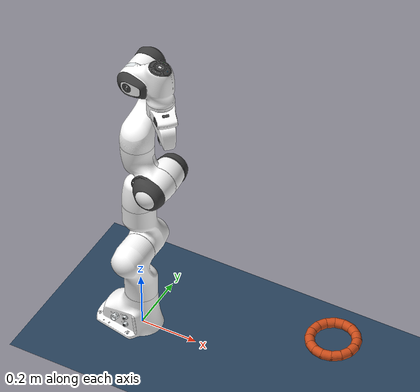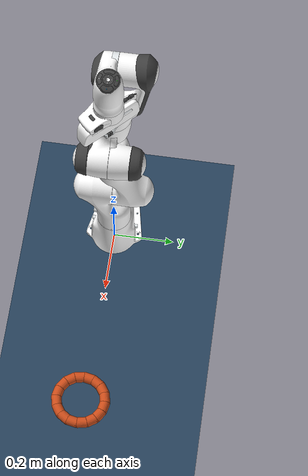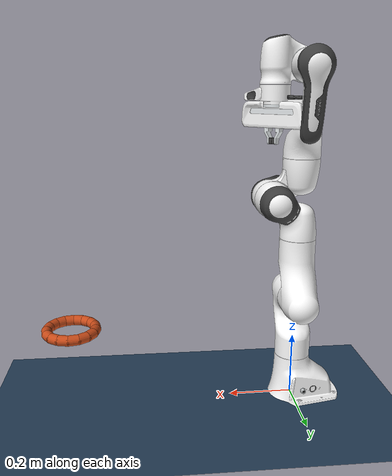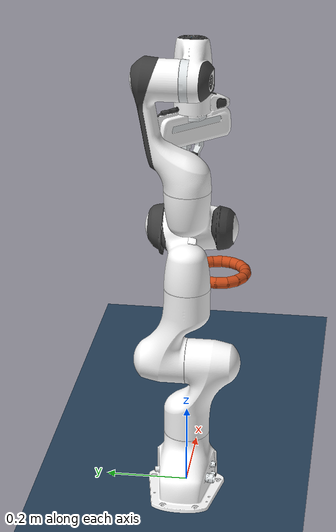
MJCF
<mujoco model="panda scene with torus ring">
  <include file="panda.xml"/>

  <statistic center="0.3 0 0.4" extent="1"/>
  <option iterations="60" noslip_iterations="30"/>

  <visual>
    <headlight diffuse="0.6 0.6 0.6" ambient="0.3 0.3 0.3" specular="0 0 0"/>
    <rgba haze="0.15 0.25 0.35 1"/>
    <global azimuth="120" elevation="-20"/>
  </visual>

  <asset>
    <texture type="skybox" builtin="gradient" rgb1="0.3 0.5 0.7" rgb2="0 0 0" width="512" height="3072"/>
    <texture type="2d" name="groundplane" builtin="checker" mark="edge" rgb1="0.2 0.3 0.4" rgb2="0.1 0.2 0.3"
      markrgb="0.8 0.8 0.8" width="300" height="300"/>
    <material name="groundplane" texture="groundplane" texuniform="true" texrepeat="5 5" reflectance="0.2"/>
    <material name="torus_mat" rgba="0.8 0.3 0.1 1" specular="0.5" shininess="0.5"/>
  </asset>

  <worldbody>
    <light pos="0 0 1.5" dir="0 0 -1" directional="true"/>
    <geom name="floor" size="0 0 0.05" type="plane" material="groundplane"
          solref="0.001 1" solimp="0.99 0.999 0.001" priority="1"/>

    <!--
      空心圆环：16 个 capsule 首尾相接排成圆环
      主半径 R = 0.075 m (7.5 cm)，管半径 r = 0.016 m (1.6 cm)
      圆环外径 ≈ 18.2 cm，内径 ≈ 11.8 cm，管径 3.2 cm（夹爪可夹）
    -->
    <body name="torus" pos="0.7 0 0.25">
      <freejoint/>
      <geom name="seg0"  type="capsule" size="0.016" material="torus_mat"
            fromto=" 0.07500  0.00000 0  0.06929  0.02870 0"
            condim="6" friction="10 4 0.5" solref="0.015 1" margin="0.002" mass="0.002"/>
      <geom name="seg1"  type="capsule" size="0.016" material="torus_mat"
            fromto=" 0.06929  0.02870 0  0.05303  0.05303 0"
            condim="6" friction="10 4 0.5" solref="0.015 1" margin="0.002" mass="0.002"/>
      <geom name="seg2"  type="capsule" size="0.016" material="torus_mat"
            fromto=" 0.05303  0.05303 0  0.02870  0.06929 0"
            condim="6" friction="10 4 0.5" solref="0.015 1" margin="0.002" mass="0.002"/>
      <geom name="seg3"  type="capsule" size="0.016" material="torus_mat"
            fromto=" 0.02870  0.06929 0  0.00000  0.07500 0"
            condim="6" friction="10 4 0.5" solref="0.015 1" margin="0.002" mass="0.002"/>
      <geom name="seg4"  type="capsule" size="0.016" material="torus_mat"
            fromto=" 0.00000  0.07500 0 -0.02870  0.06929 0"
            condim="6" friction="10 4 0.5" solref="0.015 1" margin="0.002" mass="0.002"/>
      <geom name="seg5"  type="capsule" size="0.016" material="torus_mat"
            fromto="-0.02870  0.06929 0 -0.05303  0.05303 0"
            condim="6" friction="10 4 0.5" solref="0.015 1" margin="0.002" mass="0.002"/>
      <geom name="seg6"  type="capsule" size="0.016" material="torus_mat"
            fromto="-0.05303  0.05303 0 -0.06929  0.02870 0"
            condim="6" friction="10 4 0.5" solref="0.015 1" margin="0.002" mass="0.002"/>
      <geom name="seg7"  type="capsule" size="0.016" material="torus_mat"
            fromto="-0.06929  0.02870 0 -0.07500  0.00000 0"
            condim="6" friction="10 4 0.5" solref="0.015 1" margin="0.002" mass="0.002"/>
      <geom name="seg8"  type="capsule" size="0.016" material="torus_mat"
            fromto="-0.07500  0.00000 0 -0.06929 -0.02870 0"
            condim="6" friction="10 4 0.5" solref="0.015 1" margin="0.002" mass="0.002"/>
      <geom name="seg9"  type="capsule" size="0.016" material="torus_mat"
            fromto="-0.06929 -0.02870 0 -0.05303 -0.05303 0"
            condim="6" friction="10 4 0.5" solref="0.015 1" margin="0.002" mass="0.002"/>
      <geom name="seg10" type="capsule" size="0.016" material="torus_mat"
            fromto="-0.05303 -0.05303 0 -0.02870 -0.06929 0"
            condim="6" friction="10 4 0.5" solref="0.015 1" margin="0.002" mass="0.002"/>
      <geom name="seg11" type="capsule" size="0.016" material="torus_mat"
            fromto="-0.02870 -0.06929 0  0.00000 -0.07500 0"
            condim="6" friction="10 4 0.5" solref="0.015 1" margin="0.002" mass="0.002"/>
      <geom name="seg12" type="capsule" size="0.016" material="torus_mat"
            fromto=" 0.00000 -0.07500 0  0.02870 -0.06929 0"
            condim="6" friction="10 4 0.5" solref="0.015 1" margin="0.002" mass="0.002"/>
      <geom name="seg13" type="capsule" size="0.016" material="torus_mat"
            fromto=" 0.02870 -0.06929 0  0.05303 -0.05303 0"
            condim="6" friction="10 4 0.5" solref="0.015 1" margin="0.002" mass="0.002"/>
      <geom name="seg14" type="capsule" size="0.016" material="torus_mat"
            fromto=" 0.05303 -0.05303 0  0.06929 -0.02870 0"
            condim="6" friction="10 4 0.5" solref="0.015 1" margin="0.002" mass="0.002"/>
      <geom name="seg15" type="capsule" size="0.016" material="torus_mat"
            fromto=" 0.06929 -0.02870 0  0.07500  0.00000 0"
            condim="6" friction="10 4 0.5" solref="0.015 1" margin="0.002" mass="0.002"/>
    </body>
  </worldbody>

</mujoco>

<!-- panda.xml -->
<mujoco model="panda">
  <compiler angle="radian" meshdir="assets" autolimits="true"/>

  <option integrator="implicitfast"/>

  <default>
    <default class="panda">
      <material specular="0.5" shininess="0.25"/>
      <joint armature="0.1" damping="1" axis="0 0 1" range="-2.8973 2.8973"/>
      <general dyntype="none" biastype="affine" ctrlrange="-2.8973 2.8973" forcerange="-87 87"/>
      <default class="finger">
        <joint axis="0 1 0" type="slide" range="0 0.04" damping="5" armature="0.02"/>
      </default>

      <default class="visual">
        <geom type="mesh" contype="0" conaffinity="0" group="2"/>
      </default>
      <default class="collision">
        <geom type="mesh" group="3"/>
        <default class="fingertip_pad_collision_1">
          <geom type="box" size="0.0085 0.004 0.0085" pos="0 0.0055 0.0445"
                condim="6" friction="30 12 3" solref="-30000 -1000"
                solimp="0.99 0.999 0.0005 0.5 2" priority="2"/>
        </default>
        <default class="fingertip_pad_collision_2">
          <geom type="box" size="0.003 0.002 0.003" pos="0.0055 0.002 0.05"
                condim="6" friction="30 12 3" solref="-30000 -1000"
                solimp="0.99 0.999 0.0005 0.5 2" priority="2"/>
        </default>
        <default class="fingertip_pad_collision_3">
          <geom type="box" size="0.003 0.002 0.003" pos="-0.0055 0.002 0.05"
                condim="6" friction="30 12 3" solref="-30000 -1000"
                solimp="0.99 0.999 0.0005 0.5 2" priority="2"/>
        </default>
        <default class="fingertip_pad_collision_4">
          <geom type="box" size="0.003 0.002 0.0035" pos="0.0055 0.002 0.0395"
                condim="6" friction="30 12 3" solref="-30000 -1000"
                solimp="0.99 0.999 0.0005 0.5 2" priority="2"/>
        </default>
        <default class="fingertip_pad_collision_5">
          <geom type="box" size="0.003 0.002 0.0035" pos="-0.0055 0.002 0.0395"
                condim="6" friction="30 12 3" solref="-30000 -1000"
                solimp="0.99 0.999 0.0005 0.5 2" priority="2"/>
        </default>
      </default>
    </default>
  </default>

  <asset>
    <material class="panda" name="white" rgba="1 1 1 1"/>
    <material class="panda" name="off_white" rgba="0.901961 0.921569 0.929412 1"/>
    <material class="panda" name="black" rgba="0.25 0.25 0.25 1"/>
    <material class="panda" name="green" rgba="0 1 0 1"/>
    <material class="panda" name="light_blue" rgba="0.039216 0.541176 0.780392 1"/>

    <!-- Collision meshes -->
    <mesh name="link0_c" file="link0.stl"/>
    <mesh name="link1_c" file="link1.stl"/>
    <mesh name="link2_c" file="link2.stl"/>
    <mesh name="link3_c" file="link3.stl"/>
    <mesh name="link4_c" file="link4.stl"/>
    <mesh name="link5_c0" file="link5_collision_0.obj"/>
    <mesh name="link5_c1" file="link5_collision_1.obj"/>
    <mesh name="link5_c2" file="link5_collision_2.obj"/>
    <mesh name="link6_c" file="link6.stl"/>
    <mesh name="link7_c" file="link7.stl"/>
    <mesh name="hand_c" file="hand.stl"/>

    <!-- Visual meshes -->
    <mesh file="link0_0.obj"/>
    <mesh file="link0_1.obj"/>
    <mesh file="link0_2.obj"/>
    <mesh file="link0_3.obj"/>
    <mesh file="link0_4.obj"/>
    <mesh file="link0_5.obj"/>
    <mesh file="link0_7.obj"/>
    <mesh file="link0_8.obj"/>
    <mesh file="link0_9.obj"/>
    <mesh file="link0_10.obj"/>
    <mesh file="link0_11.obj"/>
    <mesh file="link1.obj"/>
    <mesh file="link2.obj"/>
    <mesh file="link3_0.obj"/>
    <mesh file="link3_1.obj"/>
    <mesh file="link3_2.obj"/>
    <mesh file="link3_3.obj"/>
    <mesh file="link4_0.obj"/>
    <mesh file="link4_1.obj"/>
    <mesh file="link4_2.obj"/>
    <mesh file="link4_3.obj"/>
    <mesh file="link5_0.obj"/>
    <mesh file="link5_1.obj"/>
    <mesh file="link5_2.obj"/>
    <mesh file="link6_0.obj"/>
    <mesh file="link6_1.obj"/>
    <mesh file="link6_2.obj"/>
    <mesh file="link6_3.obj"/>
    <mesh file="link6_4.obj"/>
    <mesh file="link6_5.obj"/>
    <mesh file="link6_6.obj"/>
    <mesh file="link6_7.obj"/>
    <mesh file="link6_8.obj"/>
    <mesh file="link6_9.obj"/>
    <mesh file="link6_10.obj"/>
    <mesh file="link6_11.obj"/>
    <mesh file="link6_12.obj"/>
    <mesh file="link6_13.obj"/>
    <mesh file="link6_14.obj"/>
    <mesh file="link6_15.obj"/>
    <mesh file="link6_16.obj"/>
    <mesh file="link7_0.obj"/>
    <mesh file="link7_1.obj"/>
    <mesh file="link7_2.obj"/>
    <mesh file="link7_3.obj"/>
    <mesh file="link7_4.obj"/>
    <mesh file="link7_5.obj"/>
    <mesh file="link7_6.obj"/>
    <mesh file="link7_7.obj"/>
    <mesh file="hand_0.obj"/>
    <mesh file="hand_1.obj"/>
    <mesh file="hand_2.obj"/>
    <mesh file="hand_3.obj"/>
    <mesh file="hand_4.obj"/>
    <mesh file="finger_0.obj"/>
    <mesh file="finger_1.obj"/>
  </asset>

  <worldbody>
    <light name="top" pos="0 0 2" mode="trackcom"/>
    <body name="link0" childclass="panda">
      <inertial mass="0.629769" pos="-0.041018 -0.00014 0.049974"
        fullinertia="0.00315 0.00388 0.004285 8.2904e-7 0.00015 8.2299e-6"/>
      <geom mesh="link0_0" material="off_white" class="visual"/>
      <geom mesh="link0_1" material="black" class="visual"/>
      <geom mesh="link0_2" material="off_white" class="visual"/>
      <geom mesh="link0_3" material="black" class="visual"/>
      <geom mesh="link0_4" material="off_white" class="visual"/>
      <geom mesh="link0_5" material="black" class="visual"/>
      <geom mesh="link0_7" material="white" class="visual"/>
      <geom mesh="link0_8" material="white" class="visual"/>
      <geom mesh="link0_9" material="black" class="visual"/>
      <geom mesh="link0_10" material="off_white" class="visual"/>
      <geom mesh="link0_11" material="white" class="visual"/>
      <geom mesh="link0_c" class="collision"/>
      <body name="link1" pos="0 0 0.333">
        <inertial mass="4.970684" pos="0.003875 0.002081 -0.04762"
          fullinertia="0.70337 0.70661 0.0091170 -0.00013900 0.0067720 0.019169"/>
        <joint name="joint1"/>
        <geom material="white" mesh="link1" class="visual"/>
        <geom mesh="link1_c" class="collision"/>
        <body name="link2" quat="1 -1 0 0">
          <inertial mass="0.646926" pos="-0.003141 -0.02872 0.003495"
            fullinertia="0.0079620 2.8110e-2 2.5995e-2 -3.925e-3 1.0254e-2 7.04e-4"/>
          <joint name="joint2" range="-1.7628 1.7628"/>
          <geom material="white" mesh="link2" class="visual"/>
          <geom mesh="link2_c" class="collision"/>
          <body name="link3" pos="0 -0.316 0" quat="1 1 0 0">
            <joint name="joint3"/>
            <inertial mass="3.228604" pos="2.7518e-2 3.9252e-2 -6.6502e-2"
              fullinertia="3.7242e-2 3.6155e-2 1.083e-2 -4.761e-3 -1.1396e-2 -1.2805e-2"/>
            <geom mesh="link3_0" material="white" class="visual"/>
            <geom mesh="link3_1" material="white" class="visual"/>
            <geom mesh="link3_2" material="white" class="visual"/>
            <geom mesh="link3_3" material="black" class="visual"/>
            <geom mesh="link3_c" class="collision"/>
            <body name="link4" pos="0.0825 0 0" quat="1 1 0 0">
              <inertial mass="3.587895" pos="-5.317e-2 1.04419e-1 2.7454e-2"
                fullinertia="2.5853e-2 1.9552e-2 2.8323e-2 7.796e-3 -1.332e-3 8.641e-3"/>
              <joint name="joint4" range="-3.0718 -0.0698"/>
              <geom mesh="link4_0" material="white" class="visual"/>
              <geom mesh="link4_1" material="white" class="visual"/>
              <geom mesh="link4_2" material="black" class="visual"/>
              <geom mesh="link4_3" material="white" class="visual"/>
              <geom mesh="link4_c" class="collision"/>
              <body name="link5" pos="-0.0825 0.384 0" quat="1 -1 0 0">
                <inertial mass="1.225946" pos="-1.1953e-2 4.1065e-2 -3.8437e-2"
                  fullinertia="3.5549e-2 2.9474e-2 8.627e-3 -2.117e-3 -4.037e-3 2.29e-4"/>
                <joint name="joint5"/>
                <geom mesh="link5_0" material="black" class="visual"/>
                <geom mesh="link5_1" material="white" class="visual"/>
                <geom mesh="link5_2" material="white" class="visual"/>
                <geom mesh="link5_c0" class="collision"/>
                <geom mesh="link5_c1" class="collision"/>
                <geom mesh="link5_c2" class="collision"/>
                <body name="link6" quat="1 1 0 0">
                  <inertial mass="1.666555" pos="6.0149e-2 -1.4117e-2 -1.0517e-2"
                    fullinertia="1.964e-3 4.354e-3 5.433e-3 1.09e-4 -1.158e-3 3.41e-4"/>
                  <joint name="joint6" range="-0.0175 3.7525"/>
                  <geom mesh="link6_0" material="off_white" class="visual"/>
                  <geom mesh="link6_1" material="white" class="visual"/>
                  <geom mesh="link6_2" material="black" class="visual"/>
                  <geom mesh="link6_3" material="white" class="visual"/>
                  <geom mesh="link6_4" material="white" class="visual"/>
                  <geom mesh="link6_5" material="white" class="visual"/>
                  <geom mesh="link6_6" material="white" class="visual"/>
                  <geom mesh="link6_7" material="light_blue" class="visual"/>
                  <geom mesh="link6_8" material="light_blue" class="visual"/>
                  <geom mesh="link6_9" material="black" class="visual"/>
                  <geom mesh="link6_10" material="black" class="visual"/>
                  <geom mesh="link6_11" material="white" class="visual"/>
                  <geom mesh="link6_12" material="green" class="visual"/>
                  <geom mesh="link6_13" material="white" class="visual"/>
                  <geom mesh="link6_14" material="black" class="visual"/>
                  <geom mesh="link6_15" material="black" class="visual"/>
                  <geom mesh="link6_16" material="white" class="visual"/>
                  <geom mesh="link6_c" class="collision"/>
                  <body name="link7" pos="0.088 0 0" quat="1 1 0 0">
                    <inertial mass="7.35522e-01" pos="1.0517e-2 -4.252e-3 6.1597e-2"
                      fullinertia="1.2516e-2 1.0027e-2 4.815e-3 -4.28e-4 -1.196e-3 -7.41e-4"/>
                    <joint name="joint7"/>
                    <geom mesh="link7_0" material="white" class="visual"/>
                    <geom mesh="link7_1" material="black" class="visual"/>
                    <geom mesh="link7_2" material="black" class="visual"/>
                    <geom mesh="link7_3" material="black" class="visual"/>
                    <geom mesh="link7_4" material="black" class="visual"/>
                    <geom mesh="link7_5" material="black" class="visual"/>
                    <geom mesh="link7_6" material="black" class="visual"/>
                    <geom mesh="link7_7" material="white" class="visual"/>
                    <geom mesh="link7_c" class="collision"/>
                    <body name="hand" pos="0 0 0.107" quat="0.9238795 0 0 -0.3826834">
                      <inertial mass="0.73" pos="-0.01 0 0.03" diaginertia="0.001 0.0025 0.0017"/>
                      <geom mesh="hand_0" material="off_white" class="visual"/>
                      <geom mesh="hand_1" material="black" class="visual"/>
                      <geom mesh="hand_2" material="black" class="visual"/>
                      <geom mesh="hand_3" material="white" class="visual"/>
                      <geom mesh="hand_4" material="off_white" class="visual"/>
                      <geom mesh="hand_c" class="collision"/>
                      <body name="left_finger" pos="0 0 0.0584">
                        <inertial mass="0.015" pos="0 0 0" diaginertia="2.375e-6 2.375e-6 7.5e-7"/>
                        <joint name="finger_joint1" class="finger"/>
                        <geom mesh="finger_0" material="off_white" class="visual"/>
                        <geom mesh="finger_1" material="black" class="visual"/>
                        <geom mesh="finger_0" class="collision"/>
                        <geom class="fingertip_pad_collision_1"/>
                        <geom class="fingertip_pad_collision_2"/>
                        <geom class="fingertip_pad_collision_3"/>
                        <geom class="fingertip_pad_collision_4"/>
                        <geom class="fingertip_pad_collision_5"/>
                      </body>
                      <body name="right_finger" pos="0 0 0.0584" quat="0 0 0 1">
                        <inertial mass="0.015" pos="0 0 0" diaginertia="2.375e-6 2.375e-6 7.5e-7"/>
                        <joint name="finger_joint2" class="finger"/>
                        <geom mesh="finger_0" material="off_white" class="visual"/>
                        <geom mesh="finger_1" material="black" class="visual"/>
                        <geom mesh="finger_0" class="collision"/>
                        <geom class="fingertip_pad_collision_1"/>
                        <geom class="fingertip_pad_collision_2"/>
                        <geom class="fingertip_pad_collision_3"/>
                        <geom class="fingertip_pad_collision_4"/>
                        <geom class="fingertip_pad_collision_5"/>
                      </body>
                    </body>
                  </body>
                </body>
              </body>
            </body>
          </body>
        </body>
      </body>
    </body>
  </worldbody>

  <tendon>
    <fixed name="split">
      <joint joint="finger_joint1" coef="0.5"/>
      <joint joint="finger_joint2" coef="0.5"/>
    </fixed>
  </tendon>

  <equality>
    <joint joint1="finger_joint1" joint2="finger_joint2" solimp="0.95 0.99 0.001" solref="0.005 1"/>
  </equality>

  <actuator>
    <general class="panda" name="actuator1" joint="joint1" gainprm="4500" biasprm="0 -4500 -450"/>
    <general class="panda" name="actuator2" joint="joint2" gainprm="4500" biasprm="0 -4500 -450"
      ctrlrange="-1.7628 1.7628"/>
    <general class="panda" name="actuator3" joint="joint3" gainprm="3500" biasprm="0 -3500 -350"/>
    <general class="panda" name="actuator4" joint="joint4" gainprm="3500" biasprm="0 -3500 -350"
      ctrlrange="-3.0718 -0.0698"/>
    <general class="panda" name="actuator5" joint="joint5" gainprm="2000" biasprm="0 -2000 -200" forcerange="-12 12"/>
    <general class="panda" name="actuator6" joint="joint6" gainprm="2000" biasprm="0 -2000 -200" forcerange="-12 12"
      ctrlrange="-0.0175 3.7525"/>
    <general class="panda" name="actuator7" joint="joint7" gainprm="2000" biasprm="0 -2000 -200" forcerange="-12 12"/>
    <!-- Remap original ctrlrange (0, 0.04) to (0, 255): 0.04 * 100 / 255 = 0.01568627451 -->
    <general class="panda" name="actuator8" tendon="split" forcerange="-300 300" ctrlrange="0 255"
      gainprm="0.04705882353 0 0" biasprm="0 -300 -30"/>
  </actuator>

  <keyframe>
    <key name="home" qpos="0 0 0 -1.57079 0 1.57079 -0.7853 0.04 0.04" ctrl="0 0 0 -1.57079 0 1.57079 -0.7853 255"/>
  </keyframe>

  <contact>
    <exclude body1="link0" body2="link1"/>
  </contact>
</mujoco>
